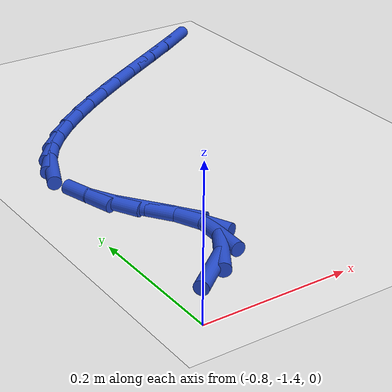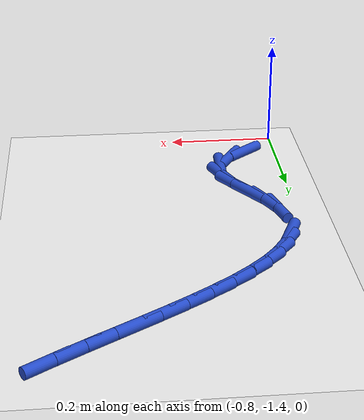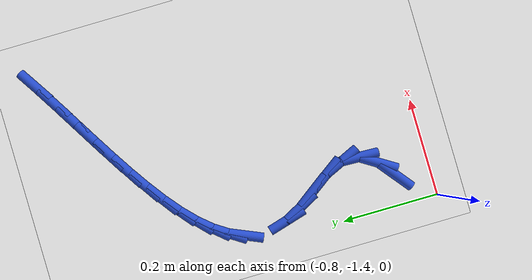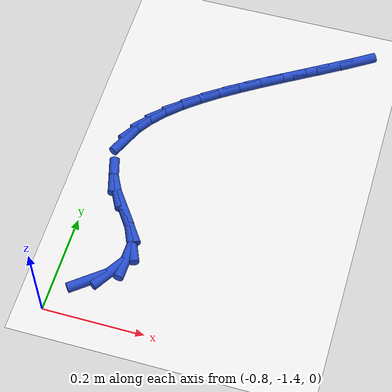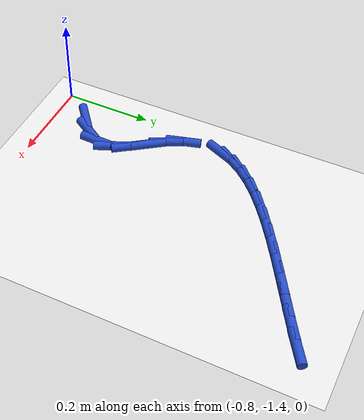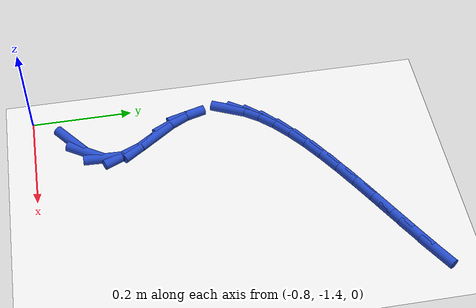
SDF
<sdf version="1.6">
 <world name="default">
  <model name="ground_plane">
   <static>1</static>
   <link name="link">
    <collision name="collision">
     <geometry><plane><normal>0 0 1</normal><size>100 100</size></plane></geometry>
     <surface><friction><ode><mu>100</mu><mu2>50</mu2></ode></friction></surface>
    </collision>
    <visual name="visual">
     <cast_shadows>0</cast_shadows>
     <geometry><plane><normal>0 0 1</normal><size>100 100</size></plane></geometry>
     <material>
      <script><uri>file://media/materials/scripts/gazebo.material</uri><name>Gazebo/WhiteGlow</name></script>
     </material>
    </visual>
   </link>
  </model>
  <model name="line">
   <link name="link_209">
    <pose>-0.7367473652243862 -1.325900373230362 0.01 0 1.57 0.6681570249532796</pose>
    <collision name="collision">
     <geometry><cylinder><radius>0.01</radius><length>0.08</length></cylinder></geometry>
    </collision>
    <visual name="visual">
     <material>
      <script><name>Gazebo/Blue</name><uri>file://media/materials/scripts/gazebo.material</uri></script>
     </material>
     <geometry><cylinder><radius>0.01</radius><length>0.08</length></cylinder></geometry>
    </visual>
   </link>
   <link name="link_210">
    <pose>-0.7031111661400528 -1.299352707244666 0.01 0 1.57 1.0075802769142308</pose>
    <collision name="collision">
     <geometry><cylinder><radius>0.01</radius><length>0.08</length></cylinder></geometry>
    </collision>
    <visual name="visual">
     <material>
      <script><name>Gazebo/Blue</name><uri>file://media/materials/scripts/gazebo.material</uri></script>
     </material>
     <geometry><cylinder><radius>0.01</radius><length>0.08</length></cylinder></geometry>
    </visual>
   </link>
   <link name="link_211">
    <pose>-0.6812775147212151 -1.26477508480393 0.01 0 1.57 1.5360740230414949</pose>
    <collision name="collision">
     <geometry><cylinder><radius>0.01</radius><length>0.08</length></cylinder></geometry>
    </collision>
    <visual name="visual">
     <material>
      <script><name>Gazebo/Blue</name><uri>file://media/materials/scripts/gazebo.material</uri></script>
     </material>
     <geometry><cylinder><radius>0.01</radius><length>0.08</length></cylinder></geometry>
    </visual>
   </link>
   <link name="link_212">
    <pose>-0.6800090451686495 -1.2282579300455734 0.01 0 1.57 -1.1484918763438074</pose>
    <collision name="collision">
     <geometry><cylinder><radius>0.01</radius><length>0.08</length></cylinder></geometry>
    </collision>
    <visual name="visual">
     <material>
      <script><name>Gazebo/Blue</name><uri>file://media/materials/scripts/gazebo.material</uri></script>
     </material>
     <geometry><cylinder><radius>0.01</radius><length>0.08</length></cylinder></geometry>
    </visual>
   </link>
   <link name="link_213">
    <pose>-0.696277980705893 -1.1920515905661853 0.01 0 1.57 -0.9575460486640217</pose>
    <collision name="collision">
     <geometry><cylinder><radius>0.01</radius><length>0.08</length></cylinder></geometry>
    </collision>
    <visual name="visual">
     <material>
      <script><name>Gazebo/Blue</name><uri>file://media/materials/scripts/gazebo.material</uri></script>
     </material>
     <geometry><cylinder><radius>0.01</radius><length>0.08</length></cylinder></geometry>
    </visual>
   </link>
   <link name="link_214">
    <pose>-0.7212803566159773 -1.1565251390985176 0.01 0 1.57 -0.9456445399893305</pose>
    <collision name="collision">
     <geometry><cylinder><radius>0.01</radius><length>0.08</length></cylinder></geometry>
    </collision>
    <visual name="visual">
     <material>
      <script><name>Gazebo/Blue</name><uri>file://media/materials/scripts/gazebo.material</uri></script>
     </material>
     <geometry><cylinder><radius>0.01</radius><length>0.08</length></cylinder></geometry>
    </visual>
   </link>
   <link name="link_215">
    <pose>-0.7461725985416926 -1.1220347477181218 0.01 0 1.57 -1.0861333463061986</pose>
    <collision name="collision">
     <geometry><cylinder><radius>0.01</radius><length>0.08</length></cylinder></geometry>
    </collision>
    <visual name="visual">
     <material>
      <script><name>Gazebo/Blue</name><uri>file://media/materials/scripts/gazebo.material</uri></script>
     </material>
     <geometry><cylinder><radius>0.01</radius><length>0.08</length></cylinder></geometry>
    </visual>
   </link>
   <link name="link_216">
    <pose>-0.7636413754874806 -1.0888589686733656 0.01 0 1.57 -1.294707897968179</pose>
    <collision name="collision">
     <geometry><cylinder><radius>0.01</radius><length>0.08</length></cylinder></geometry>
    </collision>
    <visual name="visual">
     <material>
      <script><name>Gazebo/Blue</name><uri>file://media/materials/scripts/gazebo.material</uri></script>
     </material>
     <geometry><cylinder><radius>0.01</radius><length>0.08</length></cylinder></geometry>
    </visual>
   </link>
   <link name="link_219">
    <pose>-0.7679394767596933 -0.9964761796114308 0.01 0 1.57 1.160356508874169</pose>
    <collision name="collision">
     <geometry><cylinder><radius>0.01</radius><length>0.08</length></cylinder></geometry>
    </collision>
    <visual name="visual">
     <material>
      <script><name>Gazebo/Blue</name><uri>file://media/materials/scripts/gazebo.material</uri></script>
     </material>
     <geometry><cylinder><radius>0.01</radius><length>0.08</length></cylinder></geometry>
    </visual>
   </link>
   <link name="link_220">
    <pose>-0.7553960427975885 -0.9676509176960507 0.01 0 1.57 0.9876593756203718</pose>
    <collision name="collision">
     <geometry><cylinder><radius>0.01</radius><length>0.08</length></cylinder></geometry>
    </collision>
    <visual name="visual">
     <material>
      <script><name>Gazebo/Blue</name><uri>file://media/materials/scripts/gazebo.material</uri></script>
     </material>
     <geometry><cylinder><radius>0.01</radius><length>0.08</length></cylinder></geometry>
    </visual>
   </link>
   <link name="link_221">
    <pose>-0.7368945134908294 -0.9396038988342809 0.01 0 1.57 0.8545945501681357</pose>
    <collision name="collision">
     <geometry><cylinder><radius>0.01</radius><length>0.08</length></cylinder></geometry>
    </collision>
    <visual name="visual">
     <material>
      <script><name>Gazebo/Blue</name><uri>file://media/materials/scripts/gazebo.material</uri></script>
     </material>
     <geometry><cylinder><radius>0.01</radius><length>0.08</length></cylinder></geometry>
    </visual>
   </link>
   <link name="link_222">
    <pose>-0.7130528719484763 -0.9122113685267084 0.01 0 1.57 0.7547004212236335</pose>
    <collision name="collision">
     <geometry><cylinder><radius>0.01</radius><length>0.08</length></cylinder></geometry>
    </collision>
    <visual name="visual">
     <material>
      <script><name>Gazebo/Blue</name><uri>file://media/materials/scripts/gazebo.material</uri></script>
     </material>
     <geometry><cylinder><radius>0.01</radius><length>0.08</length></cylinder></geometry>
    </visual>
   </link>
   <link name="link_223">
    <pose>-0.6844891012795897 -0.8853495722739206 0.01 0 1.57 0.6806942958253523</pose>
    <collision name="collision">
     <geometry><cylinder><radius>0.01</radius><length>0.08</length></cylinder></geometry>
    </collision>
    <visual name="visual">
     <material>
      <script><name>Gazebo/Blue</name><uri>file://media/materials/scripts/gazebo.material</uri></script>
     </material>
     <geometry><cylinder><radius>0.01</radius><length>0.08</length></cylinder></geometry>
    </visual>
   </link>
   <link name="link_224">
    <pose>-0.6518211845932301 -0.8588947555765045 0.01 0 1.57 0.6265805093231531</pose>
    <collision name="collision">
     <geometry><cylinder><radius>0.01</radius><length>0.08</length></cylinder></geometry>
    </collision>
    <visual name="visual">
     <material>
      <script><name>Gazebo/Blue</name><uri>file://media/materials/scripts/gazebo.material</uri></script>
     </material>
     <geometry><cylinder><radius>0.01</radius><length>0.08</length></cylinder></geometry>
    </visual>
   </link>
   <link name="link_225">
    <pose>-0.6156671049984578 -0.8327231639350469 0.01 0 1.57 0.5879543719295367</pose>
    <collision name="collision">
     <geometry><cylinder><radius>0.01</radius><length>0.08</length></cylinder></geometry>
    </collision>
    <visual name="visual">
     <material>
      <script><name>Gazebo/Blue</name><uri>file://media/materials/scripts/gazebo.material</uri></script>
     </material>
     <geometry><cylinder><radius>0.01</radius><length>0.08</length></cylinder></geometry>
    </visual>
   </link>
   <link name="link_226">
    <pose>-0.5766448456043327 -0.8067110428501343 0.01 0 1.57 0.5617487952758584</pose>
    <collision name="collision">
     <geometry><cylinder><radius>0.01</radius><length>0.08</length></cylinder></geometry>
    </collision>
    <visual name="visual">
     <material>
      <script><name>Gazebo/Blue</name><uri>file://media/materials/scripts/gazebo.material</uri></script>
     </material>
     <geometry><cylinder><radius>0.01</radius><length>0.08</length></cylinder></geometry>
    </visual>
   </link>
   <link name="link_227">
    <pose>-0.5353723895199153 -0.7807346378223544 0.01 0 1.57 0.5459135232944137</pose>
    <collision name="collision">
     <geometry><cylinder><radius>0.01</radius><length>0.08</length></cylinder></geometry>
    </collision>
    <visual name="visual">
     <material>
      <script><name>Gazebo/Blue</name><uri>file://media/materials/scripts/gazebo.material</uri></script>
     </material>
     <geometry><cylinder><radius>0.01</radius><length>0.08</length></cylinder></geometry>
    </visual>
   </link>
   <link name="link_228">
    <pose>-0.4924677198542661 -0.7546701943522938 0.01 0 1.57 0.539161159283686</pose>
    <collision name="collision">
     <geometry><cylinder><radius>0.01</radius><length>0.08</length></cylinder></geometry>
    </collision>
    <visual name="visual">
     <material>
      <script><name>Gazebo/Blue</name><uri>file://media/materials/scripts/gazebo.material</uri></script>
     </material>
     <geometry><cylinder><radius>0.01</radius><length>0.08</length></cylinder></geometry>
    </visual>
   </link>
   <link name="link_229">
    <pose>-0.44854881971644517 -0.7283939579405394 0.01 0 1.57 0.5407959852781521</pose>
    <collision name="collision">
     <geometry><cylinder><radius>0.01</radius><length>0.08</length></cylinder></geometry>
    </collision>
    <visual name="visual">
     <material>
      <script><name>Gazebo/Blue</name><uri>file://media/materials/scripts/gazebo.material</uri></script>
     </material>
     <geometry><cylinder><radius>0.01</radius><length>0.08</length></cylinder></geometry>
    </visual>
   </link>
   <link name="link_230">
    <pose>-0.404233672215513 -0.7017821740876784 0.01 0 1.57 0.5506126982719726</pose>
    <collision name="collision">
     <geometry><cylinder><radius>0.01</radius><length>0.08</length></cylinder></geometry>
    </collision>
    <visual name="visual">
     <material>
      <script><name>Gazebo/Blue</name><uri>file://media/materials/scripts/gazebo.material</uri></script>
     </material>
     <geometry><cylinder><radius>0.01</radius><length>0.08</length></cylinder></geometry>
    </visual>
   </link>
   <link name="link_231">
    <pose>-0.3601402604605298 -0.6747110882942977 0.01 0 1.57 0.5688501864180885</pose>
    <collision name="collision">
     <geometry><cylinder><radius>0.01</radius><length>0.08</length></cylinder></geometry>
    </collision>
    <visual name="visual">
     <material>
      <script><name>Gazebo/Blue</name><uri>file://media/materials/scripts/gazebo.material</uri></script>
     </material>
     <geometry><cylinder><radius>0.01</radius><length>0.08</length></cylinder></geometry>
    </visual>
   </link>
  </model>
 </world>
</sdf>
